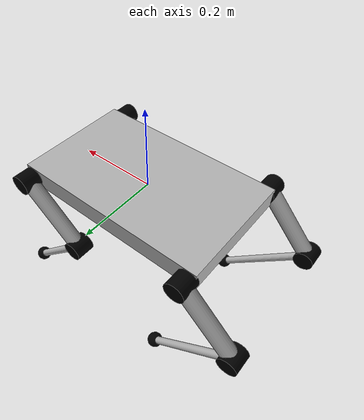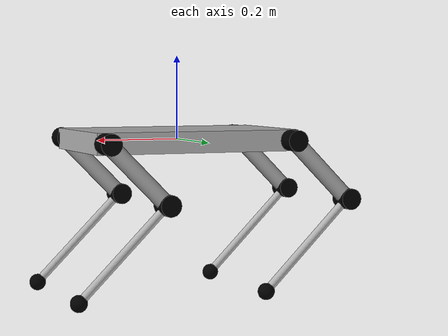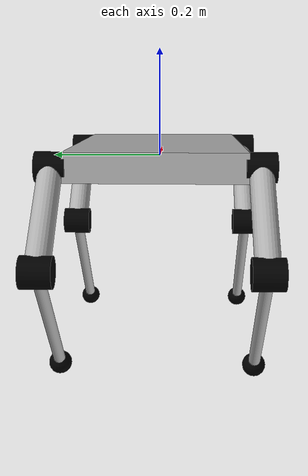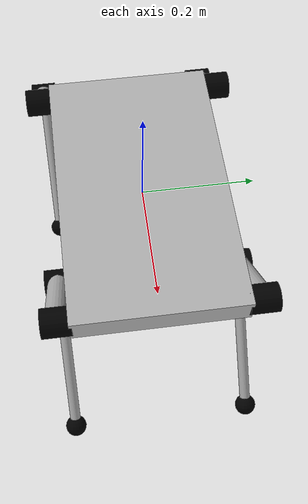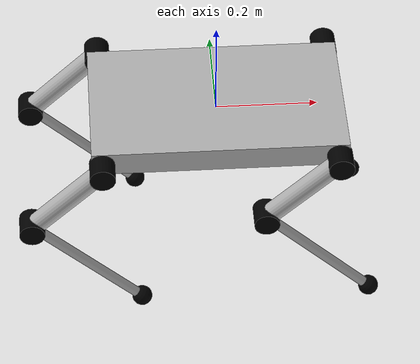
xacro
<?xml version='1.0'?>
<robot name="legged_robot" xmlns:xacro="http://ros.org/wiki/xacro">

<!-- Included URDF/XACRO Files -->
<xacro:include filename="$(find legged_robot)/urdf/materials.urdf.xacro" />
<xacro:include filename="$(find legged_robot)/urdf/leg.urdf.xacro" />

<!--configuration-->
<property name="base_mass" value="5.0" />
<property name="base_x_size" value="0.5" />
<property name="base_y_size" value="0.3" />
<property name="base_z_size" value="0.05" />

<!--macro-->
<macro name="box_inertia" params="m x y z">
<inertia  ixx="${m*(y*y+z*z)/12.}" ixy = "0." ixz = "0."
iyy="${m*(x*x+z*z)/12.}" iyz = "0."
izz="${m*(x*x+z*z)/12.}" />
</macro>

<link name="base_footprint"/>

<gazebo reference="base_footprint">
<turnGravityOff>false</turnGravityOff>
</gazebo>

  <!--body-->
  <link name="base_link">
    <inertial>
    <origin xyz="0 0 0"/>
    <mass value="${base_mass}" />
    <box_inertia  m="${base_mass}" x="${base_x_size}" y="${base_y_size}" z="${base_z_size}"/>
    </inertial>
    <visual>
    <origin xyz="0 0 0" rpy="0 0 0" />
      <geometry>
	<box size="${base_x_size} ${base_y_size} ${base_z_size}"/>
      </geometry>
    <material name="Gray" />
   </visual>
   <collision>
    <origin xyz="0 0 0" rpy="0 0 0" />
      <geometry>
	<box size="${base_x_size} ${base_y_size} ${base_z_size}"/>
      </geometry>
    </collision>
  </link>

<joint name="base_link_joint" type="fixed">
<origin xyz="0 0 0" rpy="0 0 0" />
<parent link="base_footprint"/>
<child link="base_link" />
</joint>

<!--legs macro-->
<leg fr="front" lr="left" transX="1" transY="1"/>
<leg fr="front" lr="right" transX="1" transY="-1"/>
<leg fr="rear" lr="left" transX="-1" transY="1"/>
<leg fr="rear" lr="right" transX="-1" transY="-1"/>

  <!-- =========gazebo reference============ -->
<gazebo reference="base_link">
<material>Gazebo/Gray</material>
<turnGravityOff>false</turnGravityOff>
</gazebo>

<gazebo>
  <plugin name="gazebo_ros_legged_robot" filename="libgazebo_ros_legged_robot.so" >
    <commandTopic>/legged_robot/cmd_ang</commandTopic>
    <hinge_lf1>hinge_left_front_1</hinge_lf1>
    <hinge_lf2>hinge_left_front_2</hinge_lf2>
    <hinge_lf3>hinge_left_front_3</hinge_lf3>
    <hinge_lr1>hinge_left_rear_1</hinge_lr1>
    <hinge_lr2>hinge_left_rear_2</hinge_lr2>
    <hinge_lr3>hinge_left_rear_3</hinge_lr3>
    <hinge_rf1>hinge_right_front_1</hinge_rf1>
    <hinge_rf2>hinge_right_front_2</hinge_rf2>
    <hinge_rf3>hinge_right_front_3</hinge_rf3>
    <hinge_rr1>hinge_right_rear_1</hinge_rr1>
    <hinge_rr2>hinge_right_rear_2</hinge_rr2>
    <hinge_rr3>hinge_right_rear_3</hinge_rr3>
    <gain>0.1</gain>
    <hingeTorque>100.0</hingeTorque>
    <publishHingeTF>false</publishHingeTF>
  </plugin>
  </gazebo>
</robot>

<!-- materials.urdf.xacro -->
<robot>
<material name="Black">
<color rgba="0.0 0.0 0.0 1.0"/>
</material>

<material name="Blue">
<color rgba="0.0 0.0 0.8 1.0"/>
</material>

<material name="Green">
<color rgba="0.0 0.8 0.0 1.0"/>
</material>

<material name="Gray">
<color rgba="0.7 0.7 0.7 1.0"/>
</material>

<material name="DarkGray">
<color rgba="0.3 0.3 0.3 1.0"/>
</material>

<material name="Red">
<color rgba="0.8 0.0 0.0 1.0"/>
</material>

<material name="White">
<color rgba="1.0 1.0 1.0 1.0"/>
</material>

<material name="Yellow">
<color rgba="0.8 0.8 0.0 1.0"/>
</material>
</robot>

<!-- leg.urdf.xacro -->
<robot name="leg" xmlns:xacro="http://ros.org/wiki/xacro">

<!-- legs -->
<property name="leg_base_height" value="0.050" />
<property name="leg_base_radius" value="0.025" />
<property name="leg_base_mass" value="0.5" />
<property name="lower_leg_height" value="0.3" />
<property name="lower_leg_radius" value="0.01" />
<property name="lower_leg_mass" value="2.0" />
<property name="upper_leg_height" value="0.20" />
<property name="upper_leg_radius" value="0.02" />
<property name="upper_leg_mass" value="2.0" />
<property name="limit_effort" value="1000" />
<property name="limit_velocity" value="100.0" />
<property name="limit_lower_1" value="-0.3926875" />
<property name="limit_upper_1" value="0.785" />
<property name="limit_lower_2" value="-0.1963" />
<property name="limit_upper_2" value="0.1963" />
<property name="limit_lower_3" value="-0.785" />
<property name="limit_upper_3" value="0.785" />

<property name="sphere_r" value="0.02" />
<property name="sphere_mass" value="0.02" />

<macro name="cylinder_inertia" params="m r h">
<inertia  ixx="${m*(3*r*r+h*h)/12}" ixy = "0" ixz = "0"
iyy="${m*(3*r*r+h*h)/12}" iyz = "0"
izz="${m*r*r/2}" />
</macro>

<macro name="sphere_inertia" params="m r">
<inertia  ixx="${m*(2*r*r)/5}" ixy = "0" ixz = "0"
iyy="${m*(2*r*r)/5}}" iyz = "0"
izz="${m*(2*r*r)/5}" />
</macro>

<xacro:macro name="leg" params="fr lr transX transY">
<!--fr : front, rear ; lr: left, right -->
<link name='base_${lr}_${fr}'>
  <visual>
    <geometry>
      <cylinder length="${leg_base_height}" radius="${leg_base_radius}"/>
    </geometry>
  <material name="Black" />
   </visual>
   <collision>
   <origin xyz="0 0 0" rpy="0 0 0 " />
	<geometry>
	<cylinder length="${leg_base_height}" radius="${leg_base_radius}"/>
	</geometry>
</collision>
<inertial>
     <origin xyz="0 0 0" />
      <mass value="${leg_base_mass}" />
      <cylinder_inertia  m="${leg_base_mass}" r="${leg_base_radius}" h="${leg_base_height}" />
    </inertial>
  </link>

<link name='serbo_${lr}_${fr}'>
  <visual>
    <geometry>
      <cylinder length="${leg_base_height}" radius="${leg_base_radius}"/>
    </geometry>
  <material name="Black" />
   </visual>
   <collision>
   <origin xyz="0 0 0" rpy="0 0 0 " />
	<geometry>
	<cylinder length="${leg_base_height}" radius="${leg_base_radius}"/>
	</geometry>
</collision>
<inertial>
     <origin xyz="0 0 0" />
      <mass value="${leg_base_mass}" />
      <cylinder_inertia  m="${leg_base_mass}" r="${leg_base_radius}" h="${leg_base_height}" />
    </inertial>
  </link>

   <joint name="serbo_${lr}_${fr}_joint" type="fixed">
    <parent link="link_${lr}_${fr}_upper"/>
    <child  link="serbo_${lr}_${fr}"/>
    <origin xyz="0 0 ${upper_leg_height}" rpy="1.5707 0 0"/>
  </joint>

<link name='link_${lr}_${fr}_lower'>
    <inertial>
     <origin xyz="0 0 ${lower_leg_height/2}"/>
      <mass value="${lower_leg_mass}" />
      <cylinder_inertia  m="${lower_leg_mass}" r="${lower_leg_radius}" h="${lower_leg_height}" />
    </inertial>
    <collision>
      <origin xyz="0 0 ${lower_leg_height/2}" rpy="0 0 0" />
      <geometry>
	<cylinder length="${lower_leg_height}" radius="${lower_leg_radius}"/>
      </geometry>
    </collision>
    <visual>
      <origin xyz="0 0 ${lower_leg_height/2}" rpy="0 0 0" />
      <geometry>
	<cylinder length="${lower_leg_height}" radius="${lower_leg_radius}"/>
      </geometry>
    <material name="Gray" />
   </visual>
  </link>

  <link name='link_${lr}_${fr}_upper'>
    <inertial>
      <origin xyz="0 0 ${upper_leg_height/2}"/>
      <mass value="${upper_leg_mass}" />
      <cylinder_inertia  m="${upper_leg_mass}" r="${upper_leg_radius}" h="${upper_leg_height}" />
    </inertial>
    <collision>
      <origin xyz="0 0 ${upper_leg_height/2}" rpy="0 0 0" />
      <geometry>
	<cylinder length="${upper_leg_height}" radius="${upper_leg_radius}"/>
      </geometry>
    </collision>
    <visual>
      <origin xyz="0 0 ${upper_leg_height/2}" rpy="0 0 0" />
      <geometry>
	<cylinder length="${upper_leg_height}" radius="${upper_leg_radius}"/>
      </geometry>
    <material name="Gray" />
   </visual>
  </link>

  <link name='ball_${lr}_${fr}'>
  <visual>
    <geometry>
      <sphere radius="${sphere_r}"/>
    </geometry>
  <material name="Black" />
   </visual>
   <collision>
   <origin xyz="0 0 0" rpy="0 0 0 " />
	<geometry>
	<sphere radius="${sphere_r}"/>
	</geometry>
</collision>
<inertial>
     <origin xyz="0 0 0" />
      <mass value="${sphere_mass}" />
      <sphere_inertia  m="${sphere_mass}" r="${sphere_r}" />
    </inertial>
  </link>

  <joint name="ball_${lr}_${fr}_joint" type="fixed">
    <parent link="link_${lr}_${fr}_lower"/>
    <child  link="ball_${lr}_${fr}"/>
    <origin xyz="0 0 ${lower_leg_height}" rpy="0 0 0"/>
  </joint>

  <!--joint-->
  <!--1st joint-->
  <joint type="revolute" name="hinge_${lr}_${fr}_1">
    <parent link="base_link"/>
    <child link="base_${lr}_${fr}"/>
    <origin xyz="${transX*0.23} ${transY*0.17} 0.0" rpy="1.5707 0.785 0" />
    <axis xyz="0 0 1"/>
    <limit effort="${limit_effort}" velocity="${limit_velocity}" lower="${limit_lower_1}" upper="${limit_upper_1}" />
  </joint>

  <!--2nd joint-->
  <joint type="revolute" name="hinge_${lr}_${fr}_2">
    <parent link="base_${lr}_${fr}"/>
    <child link="link_${lr}_${fr}_upper"/>
    <origin xyz="0 0 0" rpy="1.5707 0 0" />
    <axis xyz="1 0 0"/>
    <limit effort="${limit_effort}" velocity="${limit_velocity}" lower="${limit_lower_2}" upper="${limit_upper_2}" />
  </joint>

  <!--3rd joint-->
  <joint type="revolute" name="hinge_${lr}_${fr}_3">
    <parent link="serbo_${lr}_${fr}"/>
    <child link="link_${lr}_${fr}_lower"/>
    <origin xyz="0 0 0" rpy="0 1.5707 0" />
    <axis xyz="1 0 0"/>
    <limit effort="${limit_effort}" velocity="${limit_velocity}" lower="${limit_lower_3}" upper="${limit_upper_3}" />
  </joint>

<!-- =========gazebo reference============ -->
<gazebo reference="base_${lr}_${fr}">
<selfCollide value="false"/>
<material>Gazebo/Black</material>
<turnGravityOff>false</turnGravityOff>
</gazebo>

<gazebo reference="link_${lr}_${fr}_lower">
<selfCollide value="false"/>
<mu1 value="10000.0"/>
<mu2 value="10000.0"/>
<kp  value="10000000.0" />
<kd  value="1.0" />
<fdir1 value="1 0 0"/>
<material>Gazebo/Gray</material>
<turnGravityOff>false</turnGravityOff>
</gazebo>

<gazebo reference="link_${lr}_${fr}_upper">
<selfCollide value="false"/>
<mu1 value="10000.0"/>
<mu2 value="10000.0"/>
<kp  value="10000000.0" />
<kd  value="1.0" />
<fdir1 value="1 0 0"/>
<material>Gazebo/Gray</material>
<turnGravityOff>false</turnGravityOff>
</gazebo>

<gazebo reference="ball_${lr}_${fr}">
<selfCollide value="false"/>
<mu1 value="10000.0"/>
<mu2 value="10000.0"/>
<kp  value="10000000.0" />
<kd  value="1.0" />
<fdir1 value="1 0 0"/>
<material>Gazebo/Black</material>
<turnGravityOff>false</turnGravityOff>
</gazebo>

<gazebo reference="serbo_${lr}_${fr}">
<selfCollide value="false"/>
<mu1 value="10000.0"/>
<mu2 value="10000.0"/>
<kp  value="10000000.0" />
<kd  value="1.0" />
<fdir1 value="1 0 0"/>
<material>Gazebo/Black</material>
<turnGravityOff>false</turnGravityOff>
</gazebo>

<!-- Transmission is important to link the joints and the controller -->
<transmission name="hinge_${lr}_${fr}_1_trans">
<type>transmission_interface/SimpleTransmission</type>
<joint name="hinge_${lr}_${fr}_1">
<hardwareInterface>hardware_interface/EffortJointInterface</hardwareInterface>
</joint>
<actuator name="hinge_${lr}_${fr}_1_motor">
<mechanicalReduction>1</mechanicalReduction>
</actuator>
</transmission>

<transmission name="hinge_${lr}_${fr}_2_trans">
<type>transmission_interface/SimpleTransmission</type>
<joint name="hinge_${lr}_${fr}_2">
<hardwareInterface>hardware_interface/EffortJointInterface</hardwareInterface>
</joint>
<actuator name="hinge_${lr}_${fr}_2_motor">
<mechanicalReduction>1</mechanicalReduction>
</actuator>
</transmission>

<transmission name="hinge_${lr}_${fr}_3_trans">
<type>transmission_interface/SimpleTransmission</type>
<joint name="hinge_${lr}_${fr}_3">
<hardwareInterface>hardware_interface/EffortJointInterface</hardwareInterface>
</joint>
<actuator name="hinge_${lr}_${fr}_3_motor">
<mechanicalReduction>1</mechanicalReduction>
</actuator>
</transmission>

</xacro:macro>
</robot>
